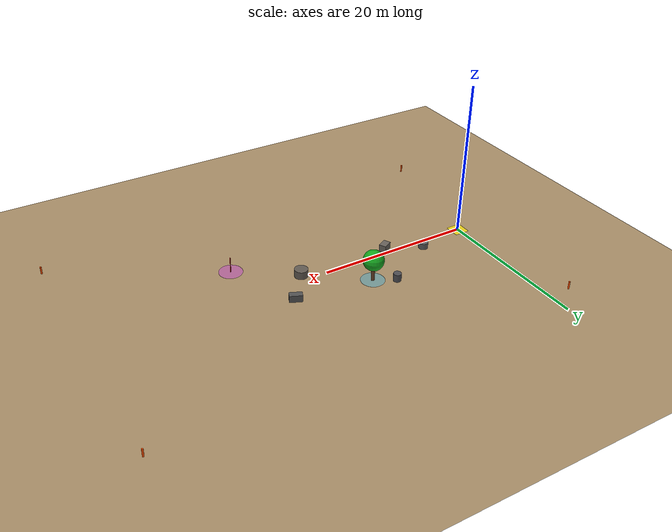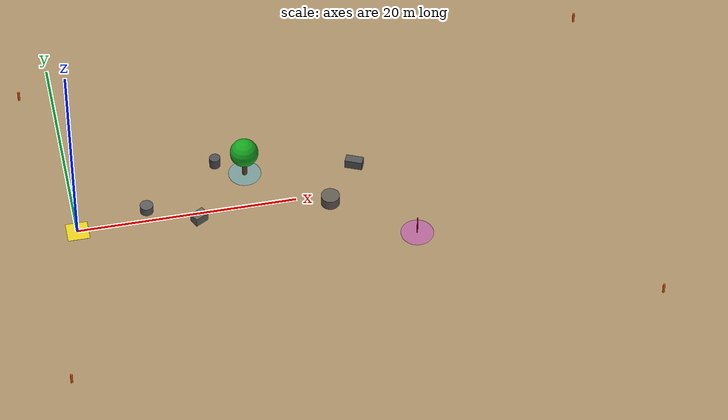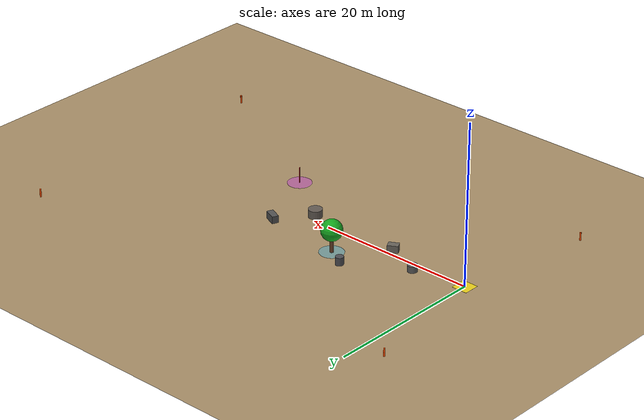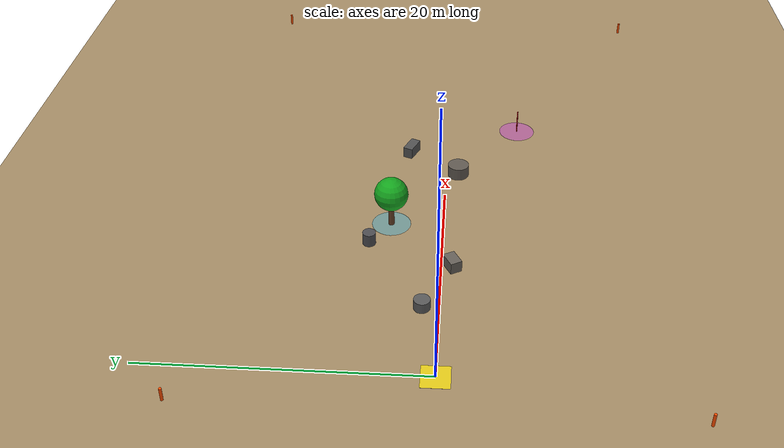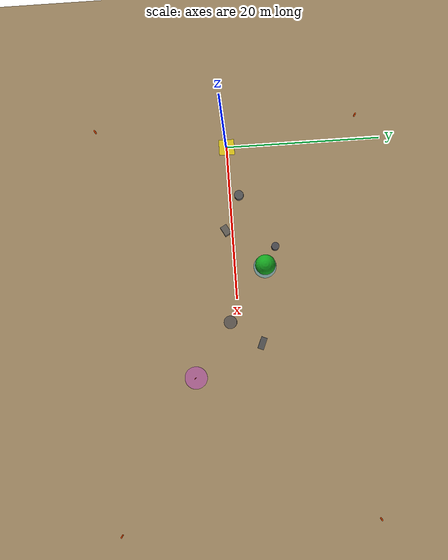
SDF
<?xml version="1.0" ?>
<sdf version="1.8">
  <world name="nagc_arena">

    <!-- ── Physics Configuration ──────────────────────────────────────── -->
    <physics name="1ms" type="ignored">
      <max_step_size>0.001</max_step_size>
      <real_time_factor>1.0</real_time_factor>
    </physics>

    <!-- ── GNSS / Spherical Coordinates (NAGC 2026 Base Station) ────── -->
    <spherical_coordinates>
      <surface_model>EARTH_WGS84</surface_model>
      <world_frame_orientation>ENU</world_frame_orientation>
      <latitude_deg>23.810300</latitude_deg>
      <longitude_deg>90.412500</longitude_deg>
      <elevation>15.0</elevation>
      <heading_deg>0</heading_deg>
    </spherical_coordinates>

    <!-- ── System Plugins (Gazebo Harmonic) ───────────────────────────── -->
    <plugin filename="gz-sim-physics-system" name="gz::sim::systems::Physics"/>
    <plugin filename="gz-sim-user-commands-system" name="gz::sim::systems::UserCommands"/>
    <plugin filename="gz-sim-scene-broadcaster-system" name="gz::sim::systems::SceneBroadcaster"/>
    <plugin filename="gz-sim-sensors-system" name="gz::sim::systems::Sensors">
      <render_engine>ogre2</render_engine>
    </plugin>
    <plugin filename="gz-sim-imu-system" name="gz::sim::systems::Imu"/>
    <plugin filename="gz-sim-navsat-system" name="gz::sim::systems::NavSat"/>

    <!-- ── Sunlight & Atmosphere ──────────────────────────────────────── -->
    <light type="directional" name="sun">
      <cast_shadows>true</cast_shadows>
      <pose>0 0 30 0 0 0</pose>
      <diffuse>0.9 0.9 0.85 1</diffuse>
      <specular>0.3 0.3 0.3 1</specular>
      <direction>-0.5 0.3 -0.9</direction>
    </light>

    <!-- ── Ground Plane ───────────────────────────────────────────────── -->
    <model name="ground_plane">
      <static>true</static>
      <link name="link">
        <collision name="collision">
          <geometry>
            <plane>
              <normal>0 0 1</normal>
              <size>100 100</size>
            </plane>
          </geometry>
          <surface>
            <friction>
              <ode>
                <mu>1.0</mu>
                <mu2>1.0</mu2>
              </ode>
            </friction>
          </surface>
        </collision>
        <visual name="visual">
          <geometry>
            <plane>
              <normal>0 0 1</normal>
              <size>100 100</size>
            </plane>
          </geometry>
          <material>
            <ambient>0.65 0.55 0.40 1</ambient>
            <diffuse>0.65 0.55 0.40 1</diffuse>
            <specular>0.1 0.1 0.1 1</specular>
          </material>
        </visual>
      </link>
    </model>

    <!-- ── Base Station (2m × 2m Marked Zone at origin) ───────────────── -->
    <model name="base_station">
      <static>true</static>
      <pose>0 0 0.002 0 0 0</pose>
      <link name="base_pad">
        <visual name="pad_visual">
          <geometry>
            <box><size>2.0 2.0 0.004</size></box>
          </geometry>
          <material>
            <ambient>0.9 0.8 0.1 1</ambient>
            <diffuse>0.9 0.8 0.1 1</diffuse>
          </material>
        </visual>
      </link>
    </model>

    <!-- ── Arena Boundary Corner Markers (53m × 34m) ─────────────────── -->
    <model name="boundary_marker_1">
      <static>true</static>
      <pose>-3 -17 0.5 0 0 0</pose>
      <link name="post"><visual name="v"><geometry><cylinder><radius>0.1</radius><length>1.0</length></cylinder></geometry><material><ambient>1 0.3 0 1</ambient><diffuse>1 0.3 0 1</diffuse></material></visual></link>
    </model>
    <model name="boundary_marker_2">
      <static>true</static>
      <pose>50 -17 0.5 0 0 0</pose>
      <link name="post"><visual name="v"><geometry><cylinder><radius>0.1</radius><length>1.0</length></cylinder></geometry><material><ambient>1 0.3 0 1</ambient><diffuse>1 0.3 0 1</diffuse></material></visual></link>
    </model>
    <model name="boundary_marker_3">
      <static>true</static>
      <pose>50 17 0.5 0 0 0</pose>
      <link name="post"><visual name="v"><geometry><cylinder><radius>0.1</radius><length>1.0</length></cylinder></geometry><material><ambient>1 0.3 0 1</ambient><diffuse>1 0.3 0 1</diffuse></material></visual></link>
    </model>
    <model name="boundary_marker_4">
      <static>true</static>
      <pose>-3 17 0.5 0 0 0</pose>
      <link name="post"><visual name="v"><geometry><cylinder><radius>0.1</radius><length>1.0</length></cylinder></geometry><material><ambient>1 0.3 0 1</ambient><diffuse>1 0.3 0 1</diffuse></material></visual></link>
    </model>

    <!-- ── GPS POINT 1: Designated Tree (Alive / Green Foliage) ──────── -->
    <!-- Located at X=16.0, Y=4.0 -->
    <model name="target_tree_point1">
      <static>true</static>
      <pose>16.0 4.0 0 0 0 0</pose>

      <!-- Waypoint Ground Ring (1.5m radius zone) -->
      <link name="waypoint_ring">
        <pose>0 0 0.003 0 0 0</pose>
        <visual name="ring_visual">
          <geometry>
            <cylinder><radius>1.5</radius><length>0.002</length></cylinder>
          </geometry>
          <material>
            <ambient>0.2 0.7 0.9 0.4</ambient>
            <diffuse>0.2 0.7 0.9 0.4</diffuse>
          </material>
        </visual>
      </link>

      <!-- Tree Trunk -->
      <link name="trunk">
        <pose>0 0 1.25 0 0 0</pose>
        <collision name="trunk_col">
          <geometry><cylinder><radius>0.22</radius><length>2.5</length></cylinder></geometry>
        </collision>
        <visual name="trunk_vis">
          <geometry><cylinder><radius>0.22</radius><length>2.5</length></cylinder></geometry>
          <material>
            <ambient>0.4 0.25 0.15 1</ambient>
            <diffuse>0.4 0.25 0.15 1</diffuse>
          </material>
        </visual>
      </link>

      <!-- Tree Canopy / Foliage (Vibrant Alive Green) -->
      <link name="canopy">
        <pose>0 0 2.8 0 0 0</pose>
        <collision name="canopy_col">
          <geometry><sphere><radius>1.3</radius></sphere></geometry>
        </collision>
        <visual name="canopy_vis">
          <geometry><sphere><radius>1.3</radius></sphere></geometry>
          <material>
            <ambient>0.08 0.65 0.12 1</ambient>
            <diffuse>0.08 0.65 0.12 1</diffuse>
          </material>
        </visual>
      </link>
    </model>

    <!-- ── GPS POINT 2: 360° Panorama Station ────────────────────────── -->
    <!-- Located at X=30.0, Y=-6.0 -->
    <model name="panorama_station_point2">
      <static>true</static>
      <pose>30.0 -6.0 0 0 0 0</pose>
      <!-- Waypoint Ground Ring (1.5m radius zone) -->
      <link name="pad">
        <pose>0 0 0.003 0 0 0</pose>
        <visual name="pad_vis">
          <geometry><cylinder><radius>1.5</radius><length>0.002</length></cylinder></geometry>
          <material>
            <ambient>0.8 0.2 0.9 0.4</ambient>
            <diffuse>0.8 0.2 0.9 0.4</diffuse>
          </material>
        </visual>
      </link>
      <!-- Small landmark flag/marker -->
      <link name="pole">
        <pose>0 0 1.0 0 0 0</pose>
        <collision name="pole_col">
          <geometry><cylinder><radius>0.05</radius><length>2.0</length></cylinder></geometry>
        </collision>
        <visual name="pole_vis">
          <geometry><cylinder><radius>0.05</radius><length>2.0</length></cylinder></geometry>
          <material><ambient>0.9 0.1 0.1 1</ambient><diffuse>0.9 0.1 0.1 1</diffuse></material>
        </visual>
      </link>
    </model>

    <!-- ── OBSTACLES: Rocks / Boulders Between Waypoints ──────────────── -->

    <!-- Obstacle 1: Boulder on path to Point 1 -->
    <model name="boulder_1">
      <static>true</static>
      <pose>6.5 1.2 0.4 0 0 0.3</pose>
      <link name="link">
        <collision name="c">
          <geometry><cylinder><radius>0.6</radius><length>0.8</length></cylinder></geometry>
        </collision>
        <visual name="v">
          <geometry><cylinder><radius>0.6</radius><length>0.8</length></cylinder></geometry>
          <material><ambient>0.35 0.35 0.35 1</ambient><diffuse>0.35 0.35 0.35 1</diffuse></material>
        </visual>
      </link>
    </model>

    <!-- Obstacle 2: Large rock block near Point 1 -->
    <model name="rock_block_2">
      <static>true</static>
      <pose>11.0 -0.8 0.45 0 0 0.5</pose>
      <link name="link">
        <collision name="c">
          <geometry><box><size>1.3 0.9 0.9</size></box></geometry>
        </collision>
        <visual name="v">
          <geometry><box><size>1.3 0.9 0.9</size></box></geometry>
          <material><ambient>0.4 0.38 0.35 1</ambient><diffuse>0.4 0.38 0.35 1</diffuse></material>
        </visual>
      </link>
    </model>

    <!-- Obstacle 3: Pillar rock off to the side -->
    <model name="rock_pillar_3">
      <static>true</static>
      <pose>13.5 5.5 0.5 0 0 0</pose>
      <link name="link">
        <collision name="c">
          <geometry><cylinder><radius>0.5</radius><length>1.0</length></cylinder></geometry>
        </collision>
        <visual name="v">
          <geometry><cylinder><radius>0.5</radius><length>1.0</length></cylinder></geometry>
          <material><ambient>0.3 0.3 0.32 1</ambient><diffuse>0.3 0.3 0.32 1</diffuse></material>
        </visual>
      </link>
    </model>

    <!-- Obstacle 4: Large rock barrier between Point 1 and Point 2 -->
    <model name="boulder_4">
      <static>true</static>
      <pose>23.0 -1.0 0.5 0 0 0.2</pose>
      <link name="link">
        <collision name="c">
          <geometry><cylinder><radius>0.85</radius><length>1.0</length></cylinder></geometry>
        </collision>
        <visual name="v">
          <geometry><cylinder><radius>0.85</radius><length>1.0</length></cylinder></geometry>
          <material><ambient>0.38 0.35 0.32 1</ambient><diffuse>0.38 0.35 0.32 1</diffuse></material>
        </visual>
      </link>
    </model>

    <!-- Obstacle 5: Rock ridge obstacle near Point 2 -->
    <model name="rock_barrier_5">
      <static>true</static>
      <pose>26.0 3.0 0.45 0 0 -0.4</pose>
      <link name="link">
        <collision name="c">
          <geometry><box><size>1.6 0.8 0.9</size></box></geometry>
        </collision>
        <visual name="v">
          <geometry><box><size>1.6 0.8 0.9</size></box></geometry>
          <material><ambient>0.32 0.32 0.32 1</ambient><diffuse>0.32 0.32 0.32 1</diffuse></material>
        </visual>
      </link>
    </model>

  </world>
</sdf>
